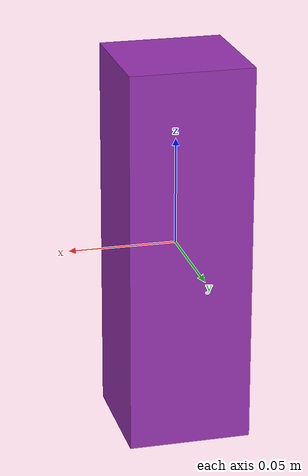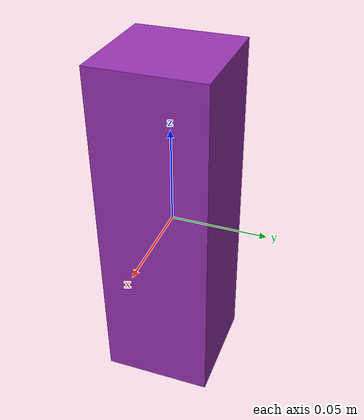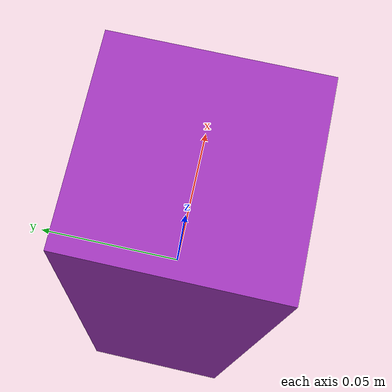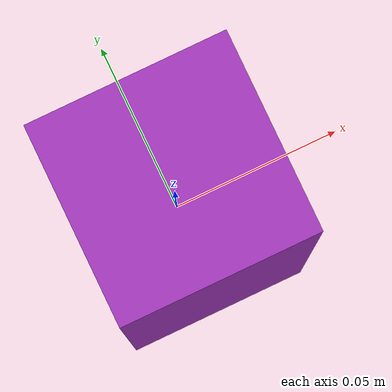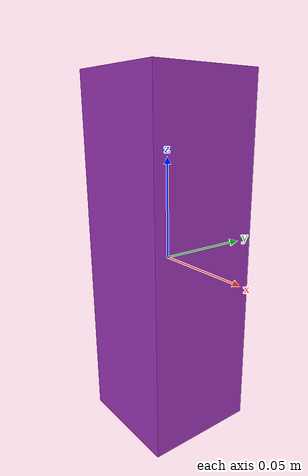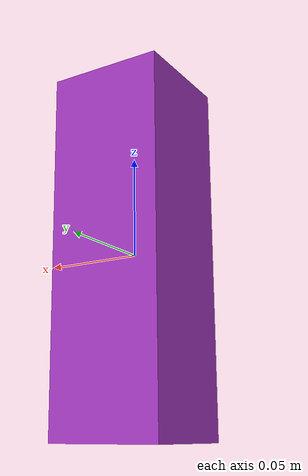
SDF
<?xml version="1.0"?>
<sdf version="1.11">  <model name="robosub_bin_cover">
    <link name="bottle">
      <inertial>
        <mass>0.5</mass>
        <inertia>
          <ixx>0.0004</ixx>
          <ixy>0</ixy>
          <ixz>0</ixz>
          <iyy>0.001</iyy>
          <iyz>0</iyz>
          <izz>0.001</izz>
        </inertia>
      </inertial>

      <visual name="bottle">
        <pose>0 0 0 0 0 0</pose>
        <geometry>
          <mesh>
            <uri>model://robosub_bottle/bottle.dae</uri>
          </mesh>
        </geometry>
        <material>
          <script>
            <uri>file://media/materials/scripts/gazebo.material</uri>
            <name>Gazebo/Purple</name>
          </script>
        </material>
      </visual>

      <collision name="bottle_collision">
        <pose>0 0 0 0 0 0</pose>
        <geometry>
          <mesh>
            <uri>model://robosub_bottle/bottle.dae</uri>
          </mesh>
        </geometry>
      </collision>
    </link>
  </model>
</sdf>
